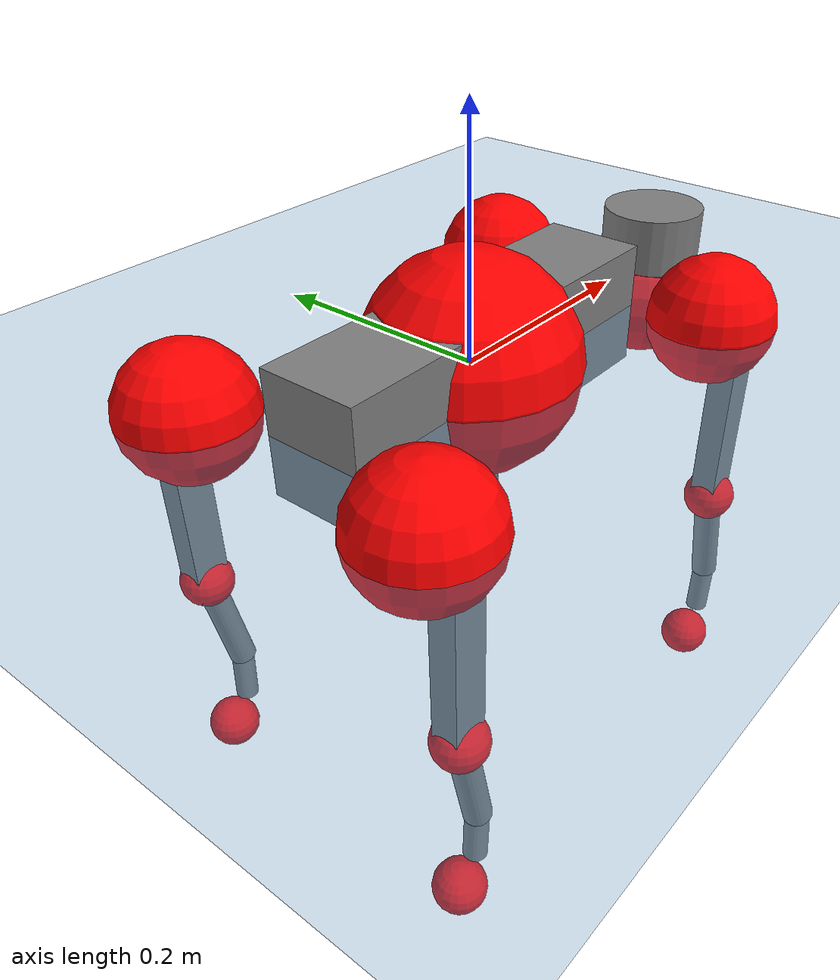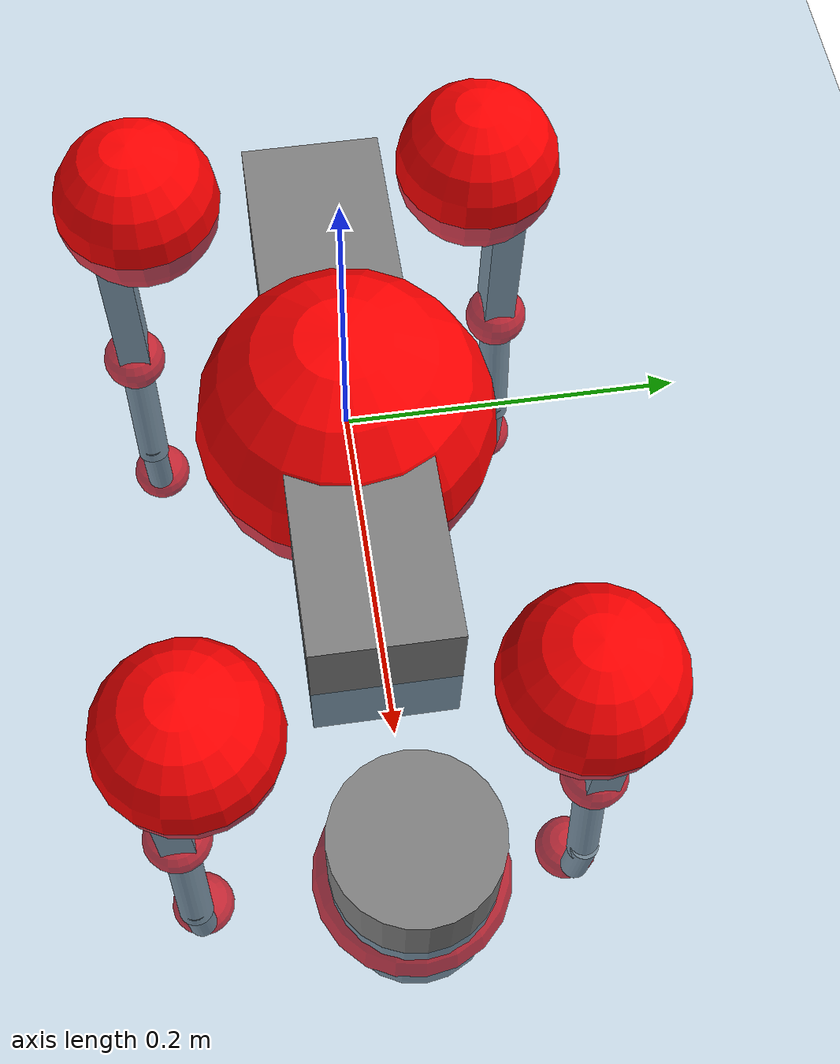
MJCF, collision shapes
<mujoco model="go2">
  <compiler angle="radian" assetdir="assets" balanceinertia="true" inertiafromgeom="false"/>

  <option timestep="0.005" density="1.2" viscosity="2e-05"/>

  <size nkey="1"/>

  <visual>
    <quality shadowsize="8192"/>
    <map shadowclip="0.5"/>
  </visual>

  <default>
    <default class="/">
      <geom contype="0" conaffinity="0" group="1" solref="-1000 -80"/>
      <site size="0.01 0.005 0.005" group="5"/>
      <general forcelimited="true" biastype="affine" gainprm="20" biasprm="0 -20 -0.5"/>
      <default class="go2">
        <joint armature="0.01" damping="0.01" frictionloss="0.2"/>
        <geom condim="1" margin="0.001"/>
        <default class="visual">
          <geom type="mesh" group="2"/>
        </default>
        <default class="collision">
          <geom group="3"/>
          <default class="foot">
            <geom size="0.022 0 0" condim="6" priority="1" friction="0.8 0.02 0.01" solimp="0.015 1 0.022"/>
          </default>
        </default>
        <default class="reward_collision_sphere">
          <geom group="5" rgba="1 0 0 1"/>
        </default>
      </default>
    </default>
  </default>

  <asset>
    <texture type="skybox" colorspace="auto" name="//unnamed_texture_0" builtin="gradient" rgb1="0.95 0.95 0.95" rgb2="0.95 0.95 0.95" width="100" height="600"/>
    <texture type="2d" colorspace="auto" name="texplane" builtin="checker" rgb1="0.345 0.575 0.748" rgb2="0.345 0.575 0.748" markrgb="1 1 1" width="512" height="512"/>
    <material name="MatPlane" class="/" texture="texplane" texuniform="true" texrepeat="2 2" specular="0.9"/>
    <material name="metal" class="/" rgba="0.9 0.95 0.95 1"/>
    <material name="black" class="/" rgba="0 0 0 1"/>
    <material name="white" class="/"/>
    <material name="gray" class="/" rgba="0.671705 0.692426 0.77427 1"/>
    <mesh name="base_0" class="/" file="base_0.obj"/>
    <mesh name="base_1" class="/" file="base_1.obj"/>
    <mesh name="base_2" class="/" file="base_2.obj"/>
    <mesh name="base_3" class="/" file="base_3.obj"/>
    <mesh name="base_4" class="/" file="base_4.obj"/>
    <mesh name="hip_0" class="/" file="hip_0.obj"/>
    <mesh name="hip_1" class="/" file="hip_1.obj"/>
    <mesh name="thigh_0" class="/" file="thigh_0.obj"/>
    <mesh name="thigh_1" class="/" file="thigh_1.obj"/>
    <mesh name="thigh_mirror_0" class="/" file="thigh_mirror_0.obj"/>
    <mesh name="thigh_mirror_1" class="/" file="thigh_mirror_1.obj"/>
    <mesh name="calf_0" class="/" file="calf_0.obj"/>
    <mesh name="calf_1" class="/" file="calf_1.obj"/>
    <mesh name="calf_mirror_0" class="/" file="calf_mirror_0.obj"/>
    <mesh name="calf_mirror_1" class="/" file="calf_mirror_1.obj"/>
    <mesh name="foot" class="/" file="foot.obj"/>
  </asset>

  <worldbody>
    <geom name="floor" class="/" size="100 100 0.125" type="plane" group="0" material="MatPlane"/>
    <light name="toplight_shadow" class="/" pos="0 0 5" dir="0.0990148 0.0990148 -0.990148" type="directional" ambient="0.04 0.04 0.04" diffuse="0.55 0.55 0.55" specular="0.12 0.12 0.12"/>
    <light name="toplight_fill" class="/" pos="0 0 5" dir="0.0990148 0.0990148 -0.990148" type="directional" castshadow="false" ambient="0.04 0.04 0.04" diffuse="0.3 0.3 0.3" specular="0.08 0.08 0.08"/>
    <body name="trunk" childclass="go2" pos="-5.39195e-05 8.22232e-05 0.000726314" quat="1 2.81769e-05 4.68165e-05 -5.99739e-05">
      <inertial pos="0.0204907 -0.000101966 -0.0051949" quat="0.00077167 0.713166 -0.00155578 0.700993" mass="5.19549" diaginertia="0.0863348 0.0822037 0.00876114"/>
      <joint name="//unnamed_joint_0" type="free" armature="0" damping="0" frictionloss="0"/>
      <geom name="//unnamed_geom_1" class="visual" material="black" mesh="base_0"/>
      <geom name="//unnamed_geom_2" class="visual" material="black" mesh="base_1"/>
      <geom name="//unnamed_geom_3" class="visual" material="black" mesh="base_2"/>
      <geom name="//unnamed_geom_4" class="visual" material="white" mesh="base_3"/>
      <geom name="//unnamed_geom_5" class="visual" material="gray" mesh="base_4"/>
      <geom name="trunk_1" class="collision" size="0.171801 0.0426991 0.0520609" type="box"/>
      <geom name="trunk_2" class="collision" size="0.0456675 0.0411007" pos="0.273547 0 0.00814684" type="cylinder"/>
      <geom name="trunk_3" class="collision" size="0.0429274" pos="0.281225 0 -0.048881"/>
      <geom name="//unnamed_geom_9" class="reward_collision_sphere" size="0.091335"/>
      <geom name="//unnamed_geom_10" class="reward_collision_sphere" size="0.054801" pos="0.268748 0 -0.0366608"/>
      <site name="imu" pos="-0.0297503 -0.00188874 0.0354197" size="0.0091335"/>
      <camera name="track" pos="0 -1.9311 0" quat="0.707107 0.707107 0 0" mode="trackcom"/>
      <camera name="ego_camera" pos="0.299462 0 0.0366608" quat="-0.5 -0.5 0.5 0.5"/>
      <body name="FL_hip" pos="0.185977 0.0449 0.00221565" quat="1 1.12968e-05 -8.12056e-05 -0.000153604">
        <inertial pos="-0.00474681 0.00271487 2.47431e-05" quat="0.497914 0.4958 0.505099 0.501138" mass="0.515746" diaginertia="0.000717499 0.000500697 0.000172545"/>
        <joint name="FL_hip_joint" pos="0 0 0" axis="0.999991 0.00387714 0.00198499" range="-1.04619 1.03032" armature="0.00945533" damping="0.00151881" frictionloss="0.178106"/>
        <geom name="//unnamed_geom_11" class="visual" material="metal" mesh="hip_0"/>
        <geom name="//unnamed_geom_12" class="visual" material="gray" mesh="hip_1"/>
        <geom name="//unnamed_geom_13" class="collision" size="0.0420141 0.018267" pos="0 0.0772442 0" quat="0.707107 0.707107 0 0" type="cylinder"/>
        <geom name="//unnamed_geom_14" class="reward_collision_sphere" size="0.054801" pos="0 0.0675886 0"/>
        <body name="FL_thigh" pos="-0.000220229 0.0913087 0.00179623" quat="1 4.3206e-05 0.000247664 6.90196e-05">
          <inertial pos="-0.00454118 -0.0215514 -0.0262166" quat="0.829406 0.0854891 -0.0203003 0.551693" mass="0.864917" diaginertia="0.00480527 0.00488842 0.000312346"/>
          <joint name="FL_thigh_joint" pos="0 0 0" axis="0.000153029 1 -0.000332552" stiffness="0.00189114" range="-1.57516 3.49808" armature="0.00934603" damping="0.00738895" frictionloss="0.180822"/>
          <geom name="//unnamed_geom_15" class="visual" material="metal" mesh="thigh_0"/>
          <geom name="//unnamed_geom_16" class="visual" material="gray" mesh="thigh_1"/>
          <geom name="//unnamed_geom_17" class="collision" size="0.0972718 0.0111885 0.0155269" pos="0 0 -0.0867638" quat="0.707107 0 0.707107 0" type="box"/>
          <body name="FL_calf" pos="-0.00123281 -0.00107257 -0.174477" quat="1 -0.000165783 -8.90708e-05 -0.000145416">
            <inertial pos="0.00584814 -0.000319181 -0.11477" quat="0.711179 0.00146297 -0.00562031 0.702987" mass="0.186703" diaginertia="0.001229 0.00122944 1.91827e-05"/>
            <joint name="FL_calf_joint" pos="0 0 0" axis="0.00527437 0.999973 -0.00506591" stiffness="0.00279236" range="-2.70773 -0.84764" armature="0.00867204" damping="0.00250815" frictionloss="0.174824"/>
            <geom name="//unnamed_geom_18" class="visual" material="gray" mesh="calf_0"/>
            <geom name="//unnamed_geom_19" class="visual" material="black" mesh="calf_1"/>
            <geom name="FL_calf0" class="collision" size="0.0109602 0.054801" pos="0.00767851 0 -0.048881" quat="0.994493 0 -0.104807 0" type="cylinder"/>
            <geom name="//unnamed_geom_21" class="collision" size="0.0100468 0.0296839" pos="0.0191963 0 -0.120573" quat="0.999688 0 0.0249974 0" type="cylinder"/>
            <geom name="//unnamed_geom_22" class="visual" pos="0 0 -0.173528" quat="1 0 0 0" material="black" mesh="foot"/>
            <geom name="FL_foot" class="foot" size="0.0177299" pos="-0.00191963 0 -0.173528"/>
            <geom name="//unnamed_geom_24" class="reward_collision_sphere" size="0.0228337"/>
            <geom name="//unnamed_geom_25" class="reward_collision_sphere" size="0.0228337" pos="-0.00191963 0 -0.173528"/>
            <site name="FL_foot" class="foot" pos="-0.00191963 0 -0.173528" size="0.0091335"/>
          </body>
        </body>
      </body>
      <body name="FR_hip" pos="0.187069 -0.0441825 0.000171826" quat="1 -2.20444e-05 1.5961e-05 4.84951e-06">
        <inertial pos="-0.00485946 -0.00182131 -0.000442403" quat="0.497803 0.505676 0.498903 0.497573" mass="0.508842" diaginertia="0.000718547 0.000488843 0.000170563"/>
        <joint name="FR_hip_joint" pos="0 0 0" axis="0.999996 0.00186621 0.00215494" stiffness="0.00239128" range="-1.05559 1.05704" armature="0.00909636" damping="0.015239" frictionloss="0.180608"/>
        <geom name="//unnamed_geom_26" class="visual" pos="0 1.3143e-09 5.63731e-08" quat="4.63268e-05 1 0 0" material="metal" mesh="hip_0"/>
        <geom name="//unnamed_geom_27" class="visual" pos="0 2.13064e-09 -1.39432e-07" quat="4.63268e-05 1 0 0" material="gray" mesh="hip_1"/>
        <geom name="//unnamed_geom_28" class="collision" size="0.0420141 0.018267" pos="0 -0.0772442 0" quat="0.707107 0.707107 0 0" type="cylinder"/>
        <geom name="//unnamed_geom_29" class="reward_collision_sphere" size="0.054801" pos="0 -0.0675886 0"/>
        <body name="FR_thigh" pos="0.00110542 -0.0914621 0.000940274" quat="1 -5.33051e-05 -0.000201891 0.000200291">
          <inertial pos="-0.0035025 0.0220317 -0.0265126" quat="0.551478 -0.0198708 0.0848884 0.829621" mass="0.875967" diaginertia="0.00487374 0.00487707 0.000314023"/>
          <joint name="FR_thigh_joint" pos="0 0 0" axis="-0.000967903 -1 -4.22066e-05" range="-3.47221 1.55499" armature="0.0091535" damping="0.00896912" frictionloss="0.195555"/>
          <geom name="//unnamed_geom_30" class="visual" material="metal" mesh="thigh_mirror_0"/>
          <geom name="//unnamed_geom_31" class="visual" material="gray" mesh="thigh_mirror_1"/>
          <geom name="//unnamed_geom_32" class="collision" size="0.0972718 0.0111885 0.0155269" pos="0 0 -0.0867638" quat="0.707107 0 0.707107 0" type="box"/>
          <body name="FR_calf" pos="0.00011321 -0.000864975 -0.173363" quat="1 -1.94539e-05 -5.94282e-05 0.000103041">
            <inertial pos="0.00591647 0.00108121 -0.115015" quat="0.70203 -0.000710879 -0.000155676 0.712147" mass="0.182656" diaginertia="0.00119831 0.00123127 1.89748e-05"/>
            <joint name="FR_calf_joint" pos="0 0 0" axis="0.00114741 -0.999998 -0.00187627" range="0.854401 2.70655" armature="0.00918373" damping="0.0102409" frictionloss="0.175353"/>
            <geom name="//unnamed_geom_33" class="visual" material="gray" mesh="calf_mirror_0"/>
            <geom name="//unnamed_geom_34" class="visual" material="black" mesh="calf_mirror_1"/>
            <geom name="FR_calf0" class="collision" size="0.0118735 0.054801" pos="0.00959814 0 -0.048881" quat="0.995004 0 -0.0998334 0" type="cylinder"/>
            <geom name="//unnamed_geom_36" class="collision" size="0.0100468 0.0296839" pos="0.0191963 0 -0.120573" quat="0.999688 0 0.0249974 0" type="cylinder"/>
            <geom name="//unnamed_geom_37" class="visual" pos="0 0 -0.173528" quat="1 0 0 0" material="black" mesh="foot"/>
            <geom name="FR_foot" class="foot" size="0.0202553" pos="-0.00191963 0 -0.173528"/>
            <geom name="//unnamed_geom_39" class="reward_collision_sphere" size="0.0228337"/>
            <geom name="//unnamed_geom_40" class="reward_collision_sphere" size="0.0228337" pos="-0.00191963 0 -0.173528"/>
            <site name="FR_foot" class="foot" pos="-0.00191963 0 -0.173528" size="0.0091335"/>
          </body>
        </body>
      </body>
      <body name="RL_hip" pos="-0.186654 0.0443451 -0.000511574" quat="1 2.29866e-06 -9.98867e-05 0.000104">
        <inertial pos="0.00441815 0.00271811 -0.000148248" quat="0.502485 0.49781 0.500412 0.499282" mass="0.513307" diaginertia="0.000722723 0.000505697 0.000171896"/>
        <joint name="RL_hip_joint" pos="0 0 0" axis="-0.999788 0.0121987 -0.0165664" stiffness="0.000690079" range="-1.05588 1.01835" armature="0.00898554" damping="0.014913" frictionloss="0.185228"/>
        <geom name="//unnamed_geom_41" class="visual" pos="-1.26431e-09 0 -2.47834e-07" quat="4.63268e-05 0 1 0" material="metal" mesh="hip_0"/>
        <geom name="//unnamed_geom_42" class="visual" pos="-2.0496e-09 0 -2.19794e-07" quat="4.63268e-05 0 1 0" material="gray" mesh="hip_1"/>
        <geom name="//unnamed_geom_43" class="collision" size="0.0420141 0.018267" pos="0 0.0772442 0" quat="0.707107 0.707107 0 0" type="cylinder"/>
        <geom name="//unnamed_geom_44" class="reward_collision_sphere" size="0.054801" pos="0 0.0675886 0"/>
        <body name="RL_thigh" pos="0.000868555 0.0906964 -0.00084942" quat="1 8.06106e-06 7.83487e-06 4.30512e-05">
          <inertial pos="-0.0033761 -0.0215376 -0.0270147" quat="0.829182 0.0850297 -0.0197355 0.552121" mass="0.87782" diaginertia="0.00484751 0.00496233 0.000315648"/>
          <joint name="RL_thigh_joint" pos="0 0 0" axis="-0.00291077 0.999995 0.00136027" range="-0.520499 4.53278" armature="0.00953685" damping="0.0112131" frictionloss="0.179686"/>
          <geom name="//unnamed_geom_45" class="visual" material="metal" mesh="thigh_0"/>
          <geom name="//unnamed_geom_46" class="visual" material="gray" mesh="thigh_1"/>
          <geom name="//unnamed_geom_47" class="collision" size="0.0972718 0.0111885 0.0155269" pos="0 0 -0.0867638" quat="0.707107 0 0.707107 0" type="box"/>
          <body name="RL_calf" pos="0.00121131 0.000492422 -0.17314" quat="1 -0.000325859 3.05954e-05 -9.67613e-05">
            <inertial pos="0.0059836 -0.000588252 -0.114893" quat="0.706176 0.00277894 -0.00621916 0.708003" mass="0.184235" diaginertia="0.0012114 0.00123374 1.88379e-05"/>
            <joint name="RL_calf_joint" pos="0 0 0" axis="-0.00898265 0.99993 -0.00772488" stiffness="0.00123218" range="-2.7189 -0.836489" armature="0.00933191" damping="0.00319325" frictionloss="0.175233"/>
            <geom name="//unnamed_geom_48" class="visual" material="gray" mesh="calf_0"/>
            <geom name="//unnamed_geom_49" class="visual" material="black" mesh="calf_1"/>
            <geom name="RL_calf0" class="collision" size="0.0118735 0.054801" pos="0.00959814 0 -0.048881" quat="0.995004 0 -0.0998334 0" type="cylinder"/>
            <geom name="//unnamed_geom_51" class="collision" size="0.0100468 0.0296839" pos="0.0191963 0 -0.120573" quat="0.999688 0 0.0249974 0" type="cylinder"/>
            <geom name="//unnamed_geom_52" class="visual" pos="0 0 -0.173528" quat="1 0 0 0" material="black" mesh="foot"/>
            <geom name="RL_foot" class="foot" size="0.0182737" pos="-0.00191963 0 -0.173528"/>
            <geom name="//unnamed_geom_54" class="reward_collision_sphere" size="0.0228337"/>
            <geom name="//unnamed_geom_55" class="reward_collision_sphere" size="0.0228337" pos="-0.00191963 0 -0.173528"/>
            <site name="RL_foot" class="foot" pos="-0.00191963 0 -0.173528" size="0.0091335"/>
          </body>
        </body>
      </body>
      <body name="RR_hip" pos="-0.185717 -0.0463296 -0.00169556" quat="1 8.39003e-05 -0.000100088 3.66388e-05">
        <inertial pos="0.00455872 -0.00187434 6.01033e-05" quat="0.499978 0.496569 0.498128 0.505282" mass="0.522191" diaginertia="0.000729211 0.000505706 0.000172331"/>
        <joint name="RR_hip_joint" pos="0 0 0" axis="-0.999999 0.000159373 -0.0010257" stiffness="0.00251062" range="-1.04477 1.06773" armature="0.00912305" damping="0.00581578" frictionloss="0.181928"/>
        <geom name="//unnamed_geom_56" class="visual" pos="1.26451e-09 1.3143e-09 -3.04207e-07" quat="2.14617e-09 4.63268e-05 4.63268e-05 -1" material="metal" mesh="hip_0"/>
        <geom name="//unnamed_geom_57" class="visual" pos="2.04911e-09 2.13064e-09 -8.03616e-08" quat="2.14617e-09 4.63268e-05 4.63268e-05 -1" material="gray" mesh="hip_1"/>
        <geom name="//unnamed_geom_58" class="collision" size="0.0420141 0.018267" pos="0 -0.0772442 0" quat="0.707107 0.707107 0 0" type="cylinder"/>
        <geom name="//unnamed_geom_59" class="reward_collision_sphere" size="0.054801" pos="0 -0.0675886 0"/>
        <body name="RR_thigh" pos="0.000451156 -0.0919539 -0.000571549" quat="1 -0.0001171 -0.000272616 -4.50357e-05">
          <inertial pos="-0.00415085 0.0212225 -0.0261857" quat="0.551609 -0.0201176 0.0850359 0.829513" mass="0.854783" diaginertia="0.00477181 0.00481154 0.000312247"/>
          <joint name="RR_thigh_joint" pos="0 0 0" axis="-0.00345412 -0.999979 -0.00551497" range="-4.54409 0.521772" armature="0.0093946" damping="0.0180831" frictionloss="0.183374"/>
          <geom name="//unnamed_geom_60" class="visual" material="metal" mesh="thigh_mirror_0"/>
          <geom name="//unnamed_geom_61" class="visual" material="gray" mesh="thigh_mirror_1"/>
          <geom name="//unnamed_geom_62" class="collision" size="0.0972718 0.0111885 0.0155269" pos="0 0 -0.0867638" quat="0.707107 0 0.707107 0" type="box"/>
          <body name="RR_calf" pos="0.000308855 -0.00101063 -0.174422" quat="1 0.000163567 3.10021e-05 -0.000495673">
            <inertial pos="0.00645209 0.000722583 -0.115739" quat="0.703287 -0.00433179 0.00138886 0.710892" mass="0.184022" diaginertia="0.00122542 0.00122316 1.89642e-05"/>
            <joint name="RR_calf_joint" pos="0 0 0" axis="0.00271681 -0.999993 -0.00252604" range="0.827257 2.7257" armature="0.00875392" damping="0.0068318" frictionloss="0.182328"/>
            <geom name="//unnamed_geom_63" class="visual" material="gray" mesh="calf_mirror_0"/>
            <geom name="//unnamed_geom_64" class="visual" material="black" mesh="calf_mirror_1"/>
            <geom name="RR_calf0" class="collision" size="0.0118735 0.054801" pos="0.00959814 0 -0.048881" quat="0.995004 0 -0.0998334 0" type="cylinder"/>
            <geom name="//unnamed_geom_66" class="collision" size="0.0100468 0.0296839" pos="0.0191963 0 -0.120573" quat="0.999688 0 0.0249974 0" type="cylinder"/>
            <geom name="//unnamed_geom_67" class="visual" pos="0 0 -0.173528" quat="1 0 0 0" material="black" mesh="foot"/>
            <geom name="RR_foot" class="foot" size="0.0219746" pos="-0.00191963 0 -0.173528"/>
            <geom name="//unnamed_geom_69" class="reward_collision_sphere" size="0.0228337"/>
            <geom name="//unnamed_geom_70" class="reward_collision_sphere" size="0.0228337" pos="-0.00191963 0 -0.173528"/>
            <site name="RR_foot" class="foot" pos="-0.00191963 0 -0.173528" size="0.0091335"/>
          </body>
        </body>
      </body>
    </body>
  </worldbody>

  <contact>
    <pair class="/" geom1="floor" geom2="FL_foot" name="//unnamed_contact_0"/>
    <pair class="/" geom1="floor" geom2="FR_foot" name="//unnamed_contact_1"/>
    <pair class="/" geom1="floor" geom2="RL_foot" name="//unnamed_contact_2"/>
    <pair class="/" geom1="floor" geom2="RR_foot" name="//unnamed_contact_3"/>
  </contact>

  <actuator>
    <general name="FL_hip" class="/" joint="FL_hip_joint" forcerange="-21.2339 21.2339" gainprm="18.546" biasprm="0 -18.546 -0.457963"/>
    <general name="FL_thigh" class="/" joint="FL_thigh_joint" forcerange="-22.4537 22.4537" gainprm="18.546" biasprm="0 -18.546 -0.457963"/>
    <general name="FL_calf" class="/" joint="FL_calf_joint" forcerange="-40.8085 40.8085" gainprm="18.546" biasprm="0 -18.546 -0.457963"/>
    <general name="FR_hip" class="/" joint="FR_hip_joint" forcerange="-22.3392 22.3392" gainprm="18.546" biasprm="0 -18.546 -0.457963"/>
    <general name="FR_thigh" class="/" joint="FR_thigh_joint" forcerange="-20.9308 20.9308" gainprm="18.546" biasprm="0 -18.546 -0.457963"/>
    <general name="FR_calf" class="/" joint="FR_calf_joint" forcerange="-41.1415 41.1415" gainprm="18.546" biasprm="0 -18.546 -0.457963"/>
    <general name="RL_hip" class="/" joint="RL_hip_joint" forcerange="-21.6468 21.6468" gainprm="18.546" biasprm="0 -18.546 -0.457963"/>
    <general name="RL_thigh" class="/" joint="RL_thigh_joint" forcerange="-21.4911 21.4911" gainprm="18.546" biasprm="0 -18.546 -0.457963"/>
    <general name="RL_calf" class="/" joint="RL_calf_joint" forcerange="-40.7841 40.7841" gainprm="18.546" biasprm="0 -18.546 -0.457963"/>
    <general name="RR_hip" class="/" joint="RR_hip_joint" forcerange="-21.9031 21.9031" gainprm="18.546" biasprm="0 -18.546 -0.457963"/>
    <general name="RR_thigh" class="/" joint="RR_thigh_joint" forcerange="-20.9965 20.9965" gainprm="18.546" biasprm="0 -18.546 -0.457963"/>
    <general name="RR_calf" class="/" joint="RR_calf_joint" forcerange="-41.7785 41.7785" gainprm="18.546" biasprm="0 -18.546 -0.457963"/>
  </actuator>

  <sensor>
    <gyro site="imu" name="imu_angular_velocity"/>
    <velocimeter site="imu" name="imu_linear_velocity"/>
    <framelinvel objtype="site" objname="FL_foot" name="FL_foot_global_linear_velocity"/>
    <framelinvel objtype="site" objname="FR_foot" name="FR_foot_global_linear_velocity"/>
    <framelinvel objtype="site" objname="RL_foot" name="RL_foot_global_linear_velocity"/>
    <framelinvel objtype="site" objname="RR_foot" name="RR_foot_global_linear_velocity"/>
  </sensor>

  <keyframe>
    <key name="home" qpos="0 0 0.325 1 0 0 0 0.1 0.8 -1.5 -0.1 -0.8 1.5 -0.1 0.8 -1.5 0.1 -0.8 1.5"/>
  </keyframe>
</mujoco>
